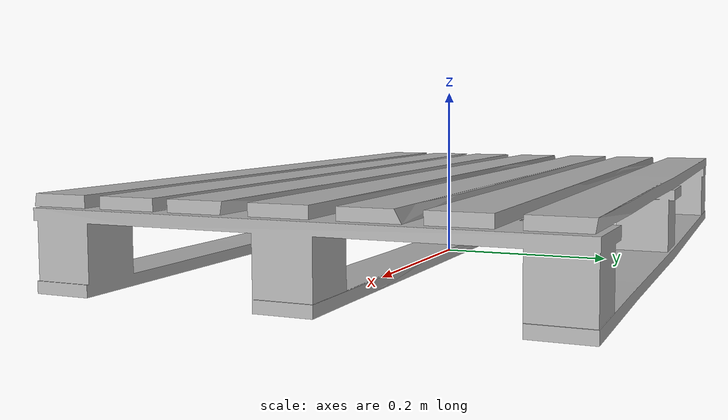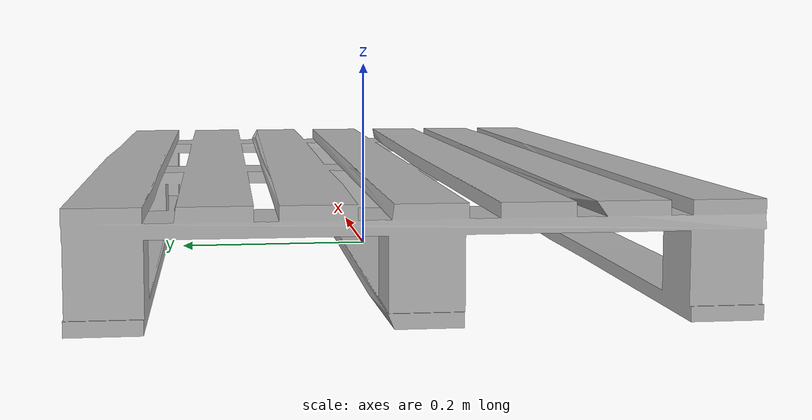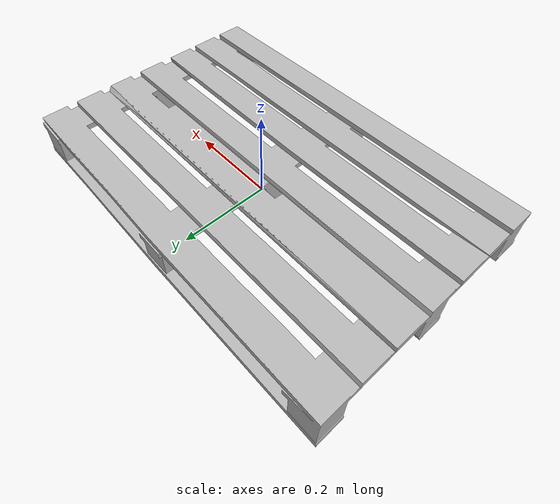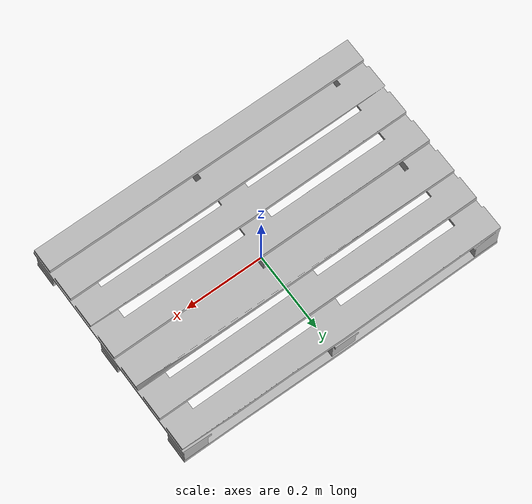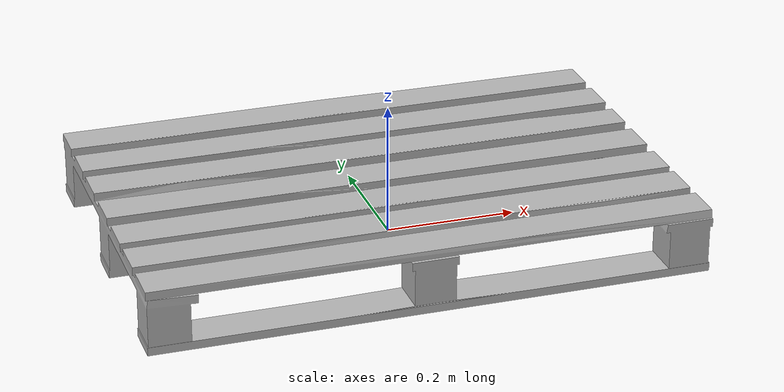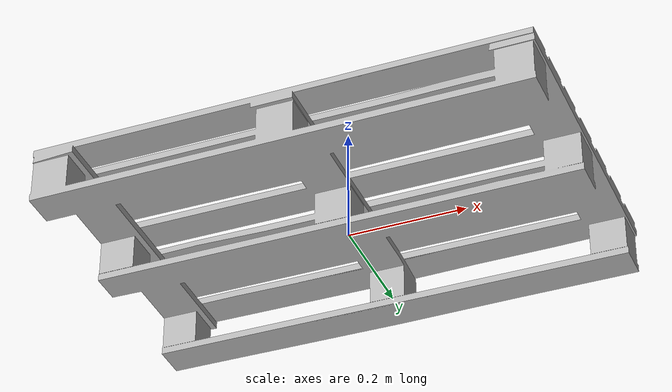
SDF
<?xml version="1.0" ?>
<sdf version='1.4'>
  <model name="pallet">
      <static>1</static>
      <link name='link'>
        <visual name='visual'>
          <geometry>
            <mesh>
              <uri>model://pallet/meshes/pallet.dae</uri>
              <scale>0.7 0.7 0.7</scale>
            </mesh>
          </geometry>
        </visual>
        <collision name='collision'>
          <laser_retro>0</laser_retro>
          <max_contacts>10</max_contacts>
          <pose>0 0 0.05 0 0 0</pose>
          <geometry>
            <box>
             <size>0.85 0.55 0.10</size>
            </box>
          </geometry>
       </collision>
      </link>
  </model>
</sdf>
